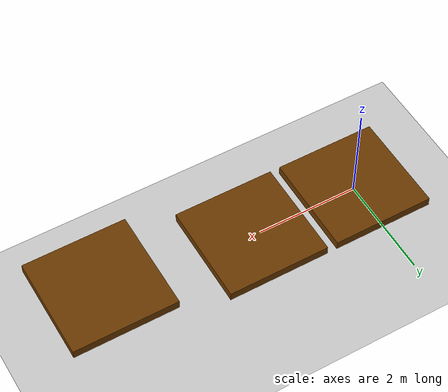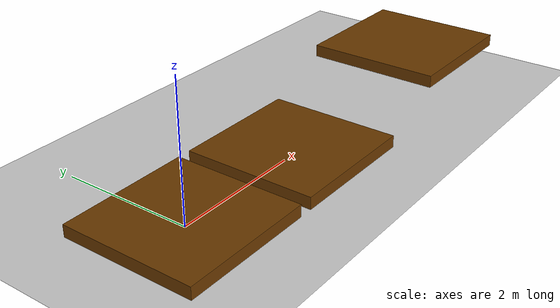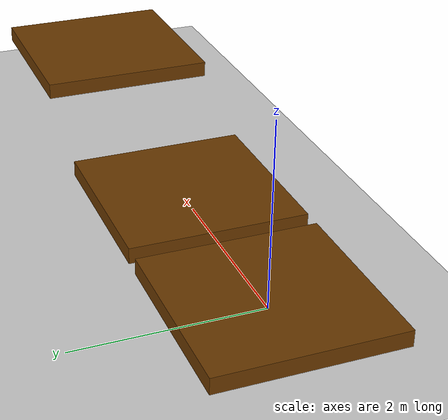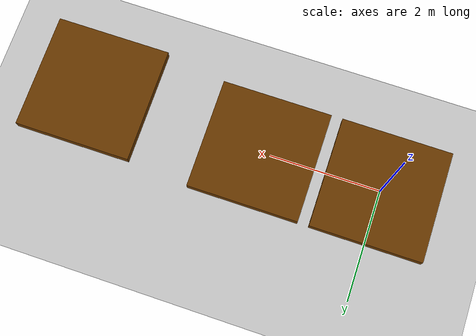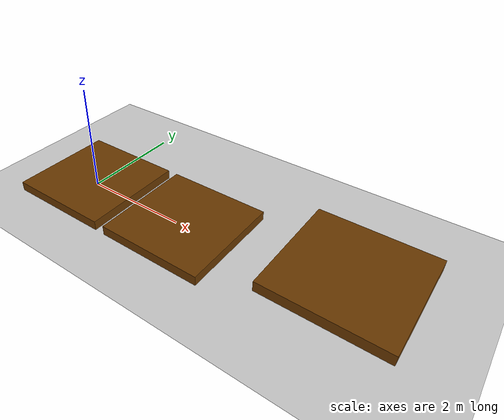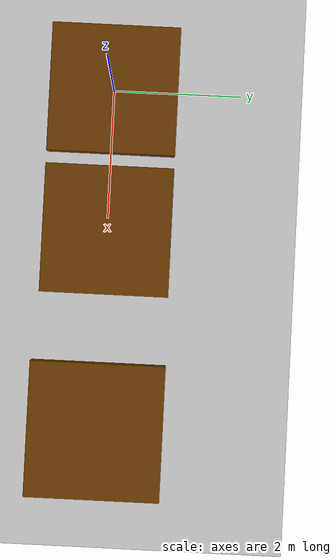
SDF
<?xml version="1.0" ?>
<sdf version="1.5">
    <world name="default">

        <physics type="ode">
        <max_step_size>0.001</max_step_size>
        <real_time_factor>1</real_time_factor>
        <real_time_update_rate>1000</real_time_update_rate>
        <gravity>0 0 -9.81</gravity>
            <ode>
                <solver>
                <type>quick</type>
                <iters>50</iters>
                <sor>1.3</sor>
                </solver>
                <constraints>
                <cfm>0.0</cfm>
                <erp>0.2</erp>
                <contact_max_correcting_vel>10.0</contact_max_correcting_vel>
                <contact_surface_layer>0.001</contact_surface_layer>
                </constraints>
            </ode>
        </physics>

        <scene>
        <sky>
            <clouds>
                <speed>12</speed>
            </clouds>
        </sky>
        </scene>
        <!-- A global light source -->
        <include>
            <uri>model://sun</uri>
        </include>
        <!-- A ground plane -->
        <include>
            <uri>model://ground_plane</uri>
        </include>
        <!-- environment blocks, obstacles or stairs -->
        <model name="static_environment">
        <static>true</static>
            <link name="floor">
                <pose>0 0 0.09 0 0 0</pose>
                <collision name="floor_collision">
                    <geometry>
                        <box>
                            <size>2 2 0.18</size>
                        </box>
                    </geometry>
                </collision>
                <visual name="floor_visual">
                    <geometry>
                        <box>
                            <size>2 2 0.18</size>
                        </box>
                    </geometry>
                    <material>
                        <ambient>0.2 0.2 0.2 1.0</ambient>
                        <diffuse>.421 0.225 0.0 1.0</diffuse>
                    </material>
                </visual>
            </link>

            <link name="floor2">
                <pose>2.2 0 0.09 0 0 0</pose>
                <collision name="floor2_collision">
                    <geometry>
                        <box>
                            <size>2 2 0.18</size>
                        </box>
                    </geometry>
                </collision>
                <visual name="floor2_visual">
                    <geometry>
                        <box>
                            <size>2 2 0.18</size>
                        </box>
                    </geometry>
                    <material>
                        <ambient>0.2 0.2 0.2 1.0</ambient>
                        <diffuse>.421 0.225 0.0 1.0</diffuse>
                    </material>
                </visual>
            </link>

            <link name="floor3">
                <pose>5.2 0 0.63 0 0 0</pose>
                <collision name="floor3_collision">
                    <geometry>
                        <box>
                            <size>2 2 0.18</size>
                        </box>
                    </geometry>
                </collision>
                <visual name="floor3_visual">
                    <geometry>
                        <box>
                            <size>2 2 0.18</size>
                        </box>
                    </geometry>
                    <material>
                        <ambient>0.2 0.2 0.2 1.0</ambient>
                        <diffuse>.421 0.225 0.0 1.0</diffuse>
                    </material>
                </visual>
            </link>

        </model>

    </world>
</sdf>
